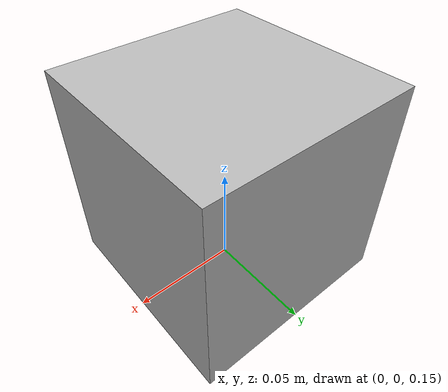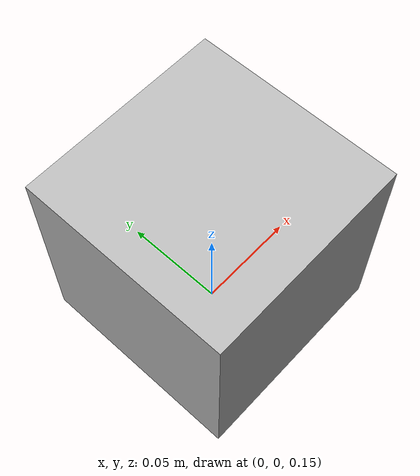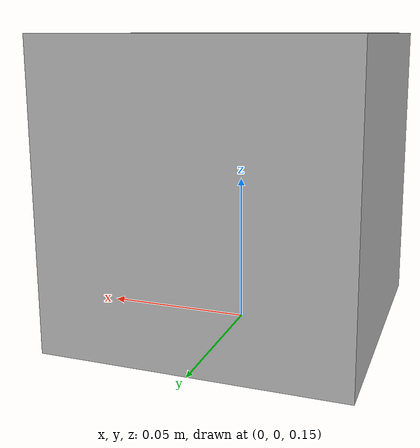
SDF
<?xml version="1.0" ?>
<sdf version="1.6">
  <model name="cardboard_box">
    <pose>0 0 0.15 0 0 0</pose>
    <link name="link">
      <inertial>
        <mass>0.75</mass>
        <inertia>
          <ixx>0.041666667</ixx>
          <ixy>0</ixy>
          <ixz>0</ixz>
          <iyy>0.056666667</iyy>
          <iyz>0</iyz>
          <izz>0.068333333</izz>
        </inertia>
      </inertial>
      <collision name="collision">
        <geometry>

          <mesh>
            <uri>model://cardboard_box/meshes/cardboard_box.dae</uri>
            <scale>0.25 0.25 0.3</scale>
          </mesh>
        </geometry>
        <surface>
          <friction>
            <ode>
              <mu>0.0</mu>
              <mu2>0.0</mu2>
            </ode>
          </friction>
          <contact>
            <ode>
              <kp>1000.0</kp>
              <kd>10</kd>
              <min_depth>0.001</min_depth>
              <max_vel>10.0</max_vel>
            </ode>
          </contact>
        </surface>
      </collision>
      <visual name="visual">
        <pose>0 0 0 0 0 0</pose>
        <geometry>
          <mesh>
            <uri>model://cardboard_box/meshes/cardboard_box.dae</uri>
            <scale>0.25 0.25 0.25</scale>
          </mesh>
        </geometry>
      </visual>
    </link>
  </model>
</sdf>
